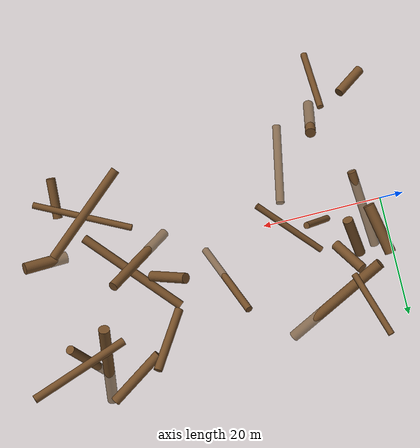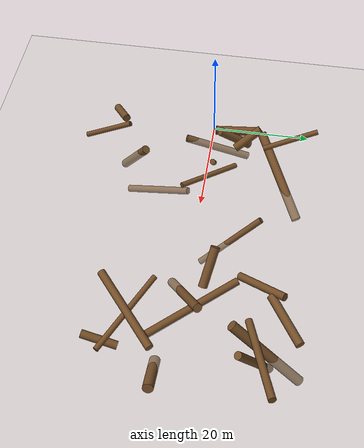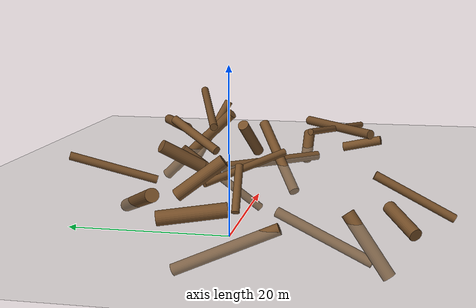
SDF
<sdf version='1.7'>
            <world name='default'>
                <light name='sun' type='directional'>
                <cast_shadows>1</cast_shadows>
                <pose>0 0 10 0 -0 0</pose>
                <diffuse>0.8 0.8 0.8 1</diffuse>
                <specular>0.2 0.2 0.2 1</specular>
                <attenuation>
                    <range>1000</range>
                    <constant>0.9</constant>
                    <linear>0.01</linear>
                    <quadratic>0.001</quadratic>
                </attenuation>
                <direction>-0.5 0.1 -0.9</direction>
                <spot>
                    <inner_angle>0</inner_angle>
                    <outer_angle>0</outer_angle>
                    <falloff>0</falloff>
                </spot>
                </light>
                <model name='ground_plane'>
                <static>1</static>
                <link name='link'>
                    <collision name='collision'>
                    <geometry>
                        <plane>
                        <normal>0 0 1</normal>
                        <size>100 100</size>
                        </plane>
                    </geometry>
                    <surface>
                        <contact>
                        <collide_bitmask>65535</collide_bitmask>
                        <ode/>
                        </contact>
                        <friction>
                        <ode>
                            <mu>100</mu>
                            <mu2>50</mu2>
                        </ode>
                        <torsional>
                            <ode/>
                        </torsional>
                        </friction>
                        <bounce/>
                    </surface>
                    <max_contacts>10</max_contacts>
                    </collision>
                    <visual name='visual'>
                    <cast_shadows>0</cast_shadows>
                    <geometry>
                        <plane>
                        <normal>0 0 1</normal>
                        <size>100 100</size>
                        </plane>
                    </geometry>
                    <material>
                        <script>
                        <uri>file://media/materials/scripts/gazebo.material</uri>
                        <name>Gazebo/Grey</name>
                        </script>
                    </material>
                    </visual>
                    <self_collide>0</self_collide>
                    <enable_wind>0</enable_wind>
                    <kinematic>0</kinematic>
                </link>
                </model>
                <gravity>0 0 -9.8</gravity>
                <magnetic_field>6e-06 2.3e-05 -4.2e-05</magnetic_field>
                <atmosphere type='adiabatic'/>
                <physics type='ode'>
                <max_step_size>0.001</max_step_size>
                <real_time_factor>1</real_time_factor>
                <real_time_update_rate>1000</real_time_update_rate>
                </physics>
                <scene>
                <ambient>0.4 0.4 0.4 1</ambient>
                <background>0.7 0.7 0.7 1</background>
                <shadows>1</shadows>
                </scene>
                <wind/>
                <spherical_coordinates>
                <surface_model>EARTH_WGS84</surface_model>
                <latitude_deg>0</latitude_deg>
                <longitude_deg>0</longitude_deg>
                <elevation>0</elevation>
                <heading_deg>0</heading_deg>
                </spherical_coordinates>
                <model name='cylinder_1'>
      <static>1</static>
      <link name='link'>
        <pose frame=''>0 0 0.1 0 -0 0</pose>
        <collision name='collision_trunk'>
          <pose frame=''>0 0 2 0 -0 0</pose>
          <geometry>
            <cylinder>
              <radius>0.608418062191568</radius>
              <length>15.44861837545718</length>
            </cylinder>
          </geometry>
        </collision>
        <visual name='trunk'>
          <pose frame=''>0 0 2 0 -0 0</pose>
          <geometry>
            <cylinder>
              <radius>0.608418062191568</radius>
              <length>15.44861837545718</length>
            </cylinder>
          </geometry>
          <material>
            <script>
              <uri>model://tree_simple/scripts</uri>
              <uri>model://tree_simple/materials/textures</uri>
              <name>TreeSimple/Trunk</name>
            </script>
          </material>
        </visual>
        <self_collide>0</self_collide>
        <kinematic>0</kinematic>
      </link>
      <pose frame=''>28.74309140010736 5.523164537384758 -1.28453564494205 81.66620832327695 51.143078525046 159.03976409988422</pose>
    </model>
    <model name='cylinder_2'>
      <static>1</static>
      <link name='link'>
        <pose frame=''>0 0 0.1 0 -0 0</pose>
        <collision name='collision_trunk'>
          <pose frame=''>0 0 2 0 -0 0</pose>
          <geometry>
            <cylinder>
              <radius>0.9042376467702632</radius>
          <length>19.53155172963524</length>
            </cylinder>
          </geometry>
        </collision>
        <visual name='trunk'>
          <pose frame=''>0 0 2 0 -0 0</pose>
          <geometry>
            <cylinder>
              <radius>0.9042376467702632</radius>
          <length>19.53155172963524</length>
            </cylinder>
          </geometry>
          <material>
            <script>
              <uri>model://tree_simple/scripts</uri>
              <uri>model://tree_simple/materials/textures</uri>
              <name>TreeSimple/Trunk</name>
            </script>
          </material>
        </visual>
        <self_collide>0</self_collide>
        <kinematic>0</kinematic>
      </link>
      <pose frame=''>13.036621423852985 15.7999727471598 -0.05680977219958461 43.079060653601765 130.9039897219697 95.72326493834481</pose>
    </model>
    <model name='cylinder_3'>
      <static>1</static>
      <link name='link'>
        <pose frame=''>0 0 0.1 0 -0 0</pose>
        <collision name='collision_trunk'>
          <pose frame=''>0 0 2 0 -0 0</pose>
          <geometry>
            <cylinder>
              <radius>0.8617644693248543</radius>
          <length>7.746352162117521</length>
            </cylinder>
          </geometry>
        </collision>
        <visual name='trunk'>
          <pose frame=''>0 0 2 0 -0 0</pose>
          <geometry>
            <cylinder>
              <radius>0.8617644693248543</radius>
          <length>7.746352162117521</length>
            </cylinder>
          </geometry>
          <material>
            <script>
              <uri>model://tree_simple/scripts</uri>
              <uri>model://tree_simple/materials/textures</uri>
              <name>TreeSimple/Trunk</name>
            </script>
          </material>
        </visual>
        <self_collide>0</self_collide>
        <kinematic>0</kinematic>
      </link>
      <pose frame=''>35.62971189444762 4.664431854534715 6.095558604206401 154.25382402557577 63.61996502717365 154.1036633618895</pose>
    </model>
    <model name='cylinder_4'>
      <static>1</static>
      <link name='link'>
        <pose frame=''>0 0 0.1 0 -0 0</pose>
        <collision name='collision_trunk'>
          <pose frame=''>0 0 2 0 -0 0</pose>
          <geometry>
            <cylinder>
              <radius>0.5104546631140593</radius>
          <length>13.108713420082962</length>
            </cylinder>
          </geometry>
        </collision>
        <visual name='trunk'>
          <pose frame=''>0 0 2 0 -0 0</pose>
          <geometry>
            <cylinder>
              <radius>0.5104546631140593</radius>
          <length>13.108713420082962</length>
            </cylinder>
          </geometry>
          <material>
            <script>
              <uri>model://tree_simple/scripts</uri>
              <uri>model://tree_simple/materials/textures</uri>
              <name>TreeSimple/Trunk</name>
            </script>
          </material>
        </visual>
        <self_collide>0</self_collide>
        <kinematic>0</kinematic>
      </link>
      <pose frame=''>17.63175319250415 -0.2950992226931213 5.07315282991263 67.01924632142848 42.8617708981833 82.90652430672031</pose>
    </model>
    <model name='cylinder_5'>
      <static>1</static>
      <link name='link'>
        <pose frame=''>0 0 0.1 0 -0 0</pose>
        <collision name='collision_trunk'>
          <pose frame=''>0 0 2 0 -0 0</pose>
          <geometry>
            <cylinder>
              <radius>0.8502355137619237</radius>
          <length>7.4206891317866654</length>
            </cylinder>
          </geometry>
        </collision>
        <visual name='trunk'>
          <pose frame=''>0 0 2 0 -0 0</pose>
          <geometry>
            <cylinder>
              <radius>0.8502355137619237</radius>
          <length>7.4206891317866654</length>
            </cylinder>
          </geometry>
          <material>
            <script>
              <uri>model://tree_simple/scripts</uri>
              <uri>model://tree_simple/materials/textures</uri>
              <name>TreeSimple/Trunk</name>
            </script>
          </material>
        </visual>
        <self_collide>0</self_collide>
        <kinematic>0</kinematic>
      </link>
      <pose frame=''>6.82884552523584 3.441067422119005 6.507988425495085 154.09791271599417 175.00707129270475 102.12005321730784</pose>
    </model>
    <model name='cylinder_6'>
      <static>1</static>
      <link name='link'>
        <pose frame=''>0 0 0.1 0 -0 0</pose>
        <collision name='collision_trunk'>
          <pose frame=''>0 0 2 0 -0 0</pose>
          <geometry>
            <cylinder>
              <radius>0.7189959923155251</radius>
          <length>10.818242629674472</length>
            </cylinder>
          </geometry>
        </collision>
        <visual name='trunk'>
          <pose frame=''>0 0 2 0 -0 0</pose>
          <geometry>
            <cylinder>
              <radius>0.7189959923155251</radius>
          <length>10.818242629674472</length>
            </cylinder>
          </geometry>
          <material>
            <script>
              <uri>model://tree_simple/scripts</uri>
              <uri>model://tree_simple/materials/textures</uri>
              <name>TreeSimple/Trunk</name>
            </script>
          </material>
        </visual>
        <self_collide>0</self_collide>
        <kinematic>0</kinematic>
      </link>
      <pose frame=''>40.63278106783768 15.726314810531612 5.23919221544903 155.0703525648164 113.59439407080282 52.615330040326654</pose>
    </model>
    <model name='cylinder_7'>
      <static>1</static>
      <link name='link'>
        <pose frame=''>0 0 0.1 0 -0 0</pose>
        <collision name='collision_trunk'>
          <pose frame=''>0 0 2 0 -0 0</pose>
          <geometry>
            <cylinder>
              <radius>0.7546415637202526</radius>
          <length>19.69096530981116</length>
            </cylinder>
          </geometry>
        </collision>
        <visual name='trunk'>
          <pose frame=''>0 0 2 0 -0 0</pose>
          <geometry>
            <cylinder>
              <radius>0.7546415637202526</radius>
          <length>19.69096530981116</length>
            </cylinder>
          </geometry>
          <material>
            <script>
              <uri>model://tree_simple/scripts</uri>
              <uri>model://tree_simple/materials/textures</uri>
              <name>TreeSimple/Trunk</name>
            </script>
          </material>
        </visual>
        <self_collide>0</self_collide>
        <kinematic>0</kinematic>
      </link>
      <pose frame=''>41.66988520149543 3.6769171025211875 -0.25780814507963257 7.86007470172402 99.76074383698679 120.10127915572967</pose>
    </model>
    <model name='cylinder_8'>
      <static>1</static>
      <link name='link'>
        <pose frame=''>0 0 0.1 0 -0 0</pose>
        <collision name='collision_trunk'>
          <pose frame=''>0 0 2 0 -0 0</pose>
          <geometry>
            <cylinder>
              <radius>0.9893891908694399</radius>
          <length>7.450921416067317</length>
            </cylinder>
          </geometry>
        </collision>
        <visual name='trunk'>
          <pose frame=''>0 0 2 0 -0 0</pose>
          <geometry>
            <cylinder>
              <radius>0.9893891908694399</radius>
          <length>7.450921416067317</length>
            </cylinder>
          </geometry>
          <material>
            <script>
              <uri>model://tree_simple/scripts</uri>
              <uri>model://tree_simple/materials/textures</uri>
              <name>TreeSimple/Trunk</name>
            </script>
          </material>
        </visual>
        <self_collide>0</self_collide>
        <kinematic>0</kinematic>
      </link>
      <pose frame=''>54.91574650300494 -2.8952766052696113 -1.038524202852459 48.00738061803634 135.86432934068577 11.555758380431374</pose>
    </model>
    <model name='cylinder_9'>
      <static>1</static>
      <link name='link'>
        <pose frame=''>0 0 0.1 0 -0 0</pose>
        <collision name='collision_trunk'>
          <pose frame=''>0 0 2 0 -0 0</pose>
          <geometry>
            <cylinder>
              <radius>0.7115546709864917</radius>
          <length>14.60313417986844</length>
            </cylinder>
          </geometry>
        </collision>
        <visual name='trunk'>
          <pose frame=''>0 0 2 0 -0 0</pose>
          <geometry>
            <cylinder>
              <radius>0.7115546709864917</radius>
          <length>14.60313417986844</length>
            </cylinder>
          </geometry>
          <material>
            <script>
              <uri>model://tree_simple/scripts</uri>
              <uri>model://tree_simple/materials/textures</uri>
              <name>TreeSimple/Trunk</name>
            </script>
          </material>
        </visual>
        <self_collide>0</self_collide>
        <kinematic>0</kinematic>
      </link>
      <pose frame=''>15.236740797864819 -7.84739092819974 -3.342324504961663 63.99019035898586 134.73577389936318 5.915048319322085</pose>
    </model>
    <model name='cylinder_10'>
      <static>1</static>
      <link name='link'>
        <pose frame=''>0 0 0.1 0 -0 0</pose>
        <collision name='collision_trunk'>
          <pose frame=''>0 0 2 0 -0 0</pose>
          <geometry>
            <cylinder>
              <radius>0.8833556837326186</radius>
          <length>9.424349421245637</length>
            </cylinder>
          </geometry>
        </collision>
        <visual name='trunk'>
          <pose frame=''>0 0 2 0 -0 0</pose>
          <geometry>
            <cylinder>
              <radius>0.8833556837326186</radius>
          <length>9.424349421245637</length>
            </cylinder>
          </geometry>
          <material>
            <script>
              <uri>model://tree_simple/scripts</uri>
              <uri>model://tree_simple/materials/textures</uri>
              <name>TreeSimple/Trunk</name>
            </script>
          </material>
        </visual>
        <self_collide>0</self_collide>
        <kinematic>0</kinematic>
      </link>
      <pose frame=''>8.314335110028457 -14.702466147794553 -1.0238908141570962 69.74730158842432 153.79835130189926 144.035933663312</pose>
    </model>
    <model name='cylinder_11'>
      <static>1</static>
      <link name='link'>
        <pose frame=''>0 0 0.1 0 -0 0</pose>
        <collision name='collision_trunk'>
          <pose frame=''>0 0 2 0 -0 0</pose>
          <geometry>
            <cylinder>
              <radius>0.7201533121115967</radius>
          <length>12.299273504063246</length>
            </cylinder>
          </geometry>
        </collision>
        <visual name='trunk'>
          <pose frame=''>0 0 2 0 -0 0</pose>
          <geometry>
            <cylinder>
              <radius>0.7201533121115967</radius>
          <length>12.299273504063246</length>
            </cylinder>
          </geometry>
          <material>
            <script>
              <uri>model://tree_simple/scripts</uri>
              <uri>model://tree_simple/materials/textures</uri>
              <name>TreeSimple/Trunk</name>
            </script>
          </material>
        </visual>
        <self_collide>0</self_collide>
        <kinematic>0</kinematic>
      </link>
      <pose frame=''>53.88244645541353 13.426297214673966 4.505252358302705 107.3244261141427 154.1312303957847 179.9027687098404</pose>
    </model>
        <model name='cylinder_12'>
      <static>1</static>
      <link name='link'>
        <pose frame=''>0 0 0.1 0 -0 0</pose>
        <collision name='collision_trunk'>
          <pose frame=''>0 0 2 0 -0 0</pose>
          <geometry>
            <cylinder>
              <radius>0.5246838180186845</radius>
          <length>16.584615731494992</length>
            </cylinder>
          </geometry>
        </collision>
        <visual name='trunk'>
          <pose frame=''>0 0 2 0 -0 0</pose>
          <geometry>
            <cylinder>
              <radius>0.5246838180186845</radius>
          <length>16.584615731494992</length>
            </cylinder>
          </geometry>
          <material>
            <script>
              <uri>model://tree_simple/scripts</uri>
              <uri>model://tree_simple/materials/textures</uri>
              <name>TreeSimple/Trunk</name>
            </script>
          </material>
        </visual>
        <self_collide>0</self_collide>
        <kinematic>0</kinematic>
      </link>
      <pose frame=''>46.46163062542597 -7.705800990506244 4.969364268418838 17.416981507381838 8.339963046557095 60.91967252131419</pose>
    </model>
    <model name='cylinder_13'>
      <static>1</static>
      <link name='link'>
        <pose frame=''>0 0 0.1 0 -0 0</pose>
        <collision name='collision_trunk'>
          <pose frame=''>0 0 2 0 -0 0</pose>
          <geometry>
            <cylinder>
              <radius>0.8211347157999933</radius>
          <length>14.915768256252578</length>
            </cylinder>
          </geometry>
        </collision>
        <visual name='trunk'>
          <pose frame=''>0 0 2 0 -0 0</pose>
          <geometry>
            <cylinder>
              <radius>0.8211347157999933</radius>
          <length>14.915768256252578</length>
            </cylinder>
          </geometry>
          <material>
            <script>
              <uri>model://tree_simple/scripts</uri>
              <uri>model://tree_simple/materials/textures</uri>
              <name>TreeSimple/Trunk</name>
            </script>
          </material>
        </visual>
        <self_collide>0</self_collide>
        <kinematic>0</kinematic>
      </link>
      <pose frame=''>42.69548280797999 1.2211111774950751 2.3098173688081847 14.993221325071652 132.54533934022606 169.25005560213484</pose>
    </model>
    <model name='cylinder_14'>
      <static>1</static>
      <link name='link'>
        <pose frame=''>0 0 0.1 0 -0 0</pose>
        <collision name='collision_trunk'>
          <pose frame=''>0 0 2 0 -0 0</pose>
          <geometry>
            <cylinder>
              <radius>0.775695143083511</radius>
          <length>5.7515442308486655</length>
            </cylinder>
          </geometry>
        </collision>
        <visual name='trunk'>
          <pose frame=''>0 0 2 0 -0 0</pose>
          <geometry>
            <cylinder>
              <radius>0.775695143083511</radius>
          <length>5.7515442308486655</length>
            </cylinder>
          </geometry>
          <material>
            <script>
              <uri>model://tree_simple/scripts</uri>
              <uri>model://tree_simple/materials/textures</uri>
              <name>TreeSimple/Trunk</name>
            </script>
          </material>
        </visual>
        <self_collide>0</self_collide>
        <kinematic>0</kinematic>
      </link>
      <pose frame=''>2.411514718821306 -18.680954583170774 3.4256196808700334 44.67236615674743 98.51871404703391 68.97438211525443</pose>
    </model>
    <model name='cylinder_15'>
      <static>1</static>
      <link name='link'>
        <pose frame=''>0 0 0.1 0 -0 0</pose>
        <collision name='collision_trunk'>
          <pose frame=''>0 0 2 0 -0 0</pose>
          <geometry>
            <cylinder>
              <radius>0.9306875769994303</radius>
          <length>17.99244101210012</length>
            </cylinder>
          </geometry>
        </collision>
        <visual name='trunk'>
          <pose frame=''>0 0 2 0 -0 0</pose>
          <geometry>
            <cylinder>
              <radius>0.9306875769994303</radius>
          <length>17.99244101210012</length>
            </cylinder>
          </geometry>
          <material>
            <script>
              <uri>model://tree_simple/scripts</uri>
              <uri>model://tree_simple/materials/textures</uri>
              <name>TreeSimple/Trunk</name>
            </script>
          </material>
        </visual>
        <self_collide>0</self_collide>
        <kinematic>0</kinematic>
      </link>
      <pose frame=''>50.950953549520314 17.766908248339526 -0.8086988557008246 78.8713804007748 77.76978098280729 14.363943389703607</pose>
    </model>
    <model name='cylinder_91'>
  <static>1</static>
  <link name='link'>
    <pose frame=''>0 0 0.1 0 -0 0</pose>
    <collision name='collision_trunk'>
      <pose frame=''>0 0 2 0 -0 0</pose>
      <geometry>
        <cylinder>
          <radius>0.5227633331</radius>
          <length>11.3468432446</length>
        </cylinder>
      </geometry>
    </collision>
    <visual name='trunk'>
      <pose frame=''>0 0 2 0 -0 0</pose>
      <geometry>
        <cylinder>
          <radius>0.5227633331</radius>
          <length>11.3468432446</length>
        </cylinder>
      </geometry>
      <material>
        <script>
          <uri>model://tree_simple/scripts</uri>
          <uri>model://tree_simple/materials/textures</uri>
          <name>TreeSimple/Trunk</name>
        </script>
      </material>
    </visual>
    <self_collide>0</self_collide>
    <kinematic>0</kinematic>
  </link>
  <pose frame=''>6.8112480675 14.3267488028 5.5481134125 43.4412564315 214.8479538177 240.0447189978</pose>
</model>

<model name='cylinder_92'>
  <static>1</static>
  <link name='link'>
    <pose frame=''>0 0 0.1 0 -0 0</pose>
    <collision name='collision_trunk'>
      <pose frame=''>0 0 2 0 -0 0</pose>
      <geometry>
        <cylinder>
          <radius>0.7678333518</radius>
          <length>14.2213559437</length>
        </cylinder>
      </geometry>
    </collision>
    <visual name='trunk'>
      <pose frame=''>0 0 2 0 -0 0</pose>
      <geometry>
        <cylinder>
          <radius>0.7678333518</radius>
          <length>14.2213559437</length>
        </cylinder>
      </geometry>
      <material>
        <script>
          <uri>model://tree_simple/scripts</uri>
          <uri>model://tree_simple/materials/textures</uri>
          <name>TreeSimple/Trunk</name>
        </script>
      </material>
    </visual>
    <self_collide>0</self_collide>
    <kinematic>0</kinematic>
  </link>
  <pose frame=''>2.9918573921 -0.8085214566 -1.8173799931 286.9714341552 119.9698818439 295.1525923782</pose>
</model>

<model name='cylinder_93'>
  <static>1</static>
  <link name='link'>
    <pose frame=''>0 0 0.1 0 -0 0</pose>
    <collision name='collision_trunk'>
      <pose frame=''>0 0 2 0 -0 0</pose>
      <geometry>
        <cylinder>
          <radius>0.6726598641</radius>
          <length>16.737690576</length>
        </cylinder>
      </geometry>
    </collision>
    <visual name='trunk'>
      <pose frame=''>0 0 2 0 -0 0</pose>
      <geometry>
        <cylinder>
          <radius>0.6726598641</radius>
          <length>16.737690576</length>
        </cylinder>
      </geometry>
      <material>
        <script>
          <uri>model://tree_simple/scripts</uri>
          <uri>model://tree_simple/materials/textures</uri>
          <name>TreeSimple/Trunk</name>
        </script>
      </material>
    </visual>
    <self_collide>0</self_collide>
    <kinematic>0</kinematic>
  </link>
  <pose frame=''>56.2634483149 15.8403090869 7.3832396963 294.5285417456 52.2199822998 34.0680591272</pose>
</model>

<model name='cylinder_94'>
  <static>1</static>
  <link name='link'>
    <pose frame=''>0 0 0.1 0 -0 0</pose>
    <collision name='collision_trunk'>
      <pose frame=''>0 0 2 0 -0 0</pose>
      <geometry>
        <cylinder>
          <radius>0.7448036661</radius>
          <length>17.3082464941</length>
        </cylinder>
      </geometry>
    </collision>
    <visual name='trunk'>
      <pose frame=''>0 0 2 0 -0 0</pose>
      <geometry>
        <cylinder>
          <radius>0.7448036661</radius>
          <length>17.3082464941</length>
        </cylinder>
      </geometry>
      <material>
        <script>
          <uri>model://tree_simple/scripts</uri>
          <uri>model://tree_simple/materials/textures</uri>
          <name>TreeSimple/Trunk</name>
        </script>
      </material>
    </visual>
    <self_collide>0</self_collide>
    <kinematic>0</kinematic>
  </link>
  <pose frame=''>49.4372234497 -7.5805158311 5.0952846951 145.8927718097 353.3971099111 313.1113581283</pose>
</model>

<model name='cylinder_95'>
  <static>1</static>
  <link name='link'>
    <pose frame=''>0 0 0.1 0 -0 0</pose>
    <collision name='collision_trunk'>
      <pose frame=''>0 0 2 0 -0 0</pose>
      <geometry>
        <cylinder>
          <radius>0.5324108359</radius>
          <length>10.7923430739</length>
        </cylinder>
      </geometry>
    </collision>
    <visual name='trunk'>
      <pose frame=''>0 0 2 0 -0 0</pose>
      <geometry>
        <cylinder>
          <radius>0.5324108359</radius>
          <length>10.7923430739</length>
        </cylinder>
      </geometry>
      <material>
        <script>
          <uri>model://tree_simple/scripts</uri>
          <uri>model://tree_simple/materials/textures</uri>
          <name>TreeSimple/Trunk</name>
        </script>
      </material>
    </visual>
    <self_collide>0</self_collide>
    <kinematic>0</kinematic>
  </link>
  <pose frame=''>6.8680557145 -19.3601396405 4.9998975457 335.0579705286 251.2321567466 358.087549044</pose>
</model>

<model name='cylinder_96'>
  <static>1</static>
  <link name='link'>
    <pose frame=''>0 0 0.1 0 -0 0</pose>
    <collision name='collision_trunk'>
      <pose frame=''>0 0 2 0 -0 0</pose>
      <geometry>
        <cylinder>
          <radius>0.5405471765</radius>
          <length>6.7501387301</length>
        </cylinder>
      </geometry>
    </collision>
    <visual name='trunk'>
      <pose frame=''>0 0 2 0 -0 0</pose>
      <geometry>
        <cylinder>
          <radius>0.5405471765</radius>
          <length>6.7501387301</length>
        </cylinder>
      </geometry>
      <material>
        <script>
          <uri>model://tree_simple/scripts</uri>
          <uri>model://tree_simple/materials/textures</uri>
          <name>TreeSimple/Trunk</name>
        </script>
      </material>
    </visual>
    <self_collide>0</self_collide>
    <kinematic>0</kinematic>
  </link>
  <pose frame=''>10.1704479976 1.2665331595 1.1694585587 25.7693404999 213.4510403916 83.5532404694</pose>
</model>

<model name='cylinder_97'>
  <static>1</static>
  <link name='link'>
    <pose frame=''>0 0 0.1 0 -0 0</pose>
    <collision name='collision_trunk'>
      <pose frame=''>0 0 2 0 -0 0</pose>
      <geometry>
        <cylinder>
          <radius>0.827595862</radius>
          <length>6.1790474967</length>
        </cylinder>
      </geometry>
    </collision>
    <visual name='trunk'>
      <pose frame=''>0 0 2 0 -0 0</pose>
      <geometry>
        <cylinder>
          <radius>0.827595862</radius>
          <length>6.1790474967</length>
        </cylinder>
      </geometry>
      <material>
        <script>
          <uri>model://tree_simple/scripts</uri>
          <uri>model://tree_simple/materials/textures</uri>
          <name>TreeSimple/Trunk</name>
        </script>
      </material>
    </visual>
    <self_collide>0</self_collide>
    <kinematic>0</kinematic>
  </link>
  <pose frame=''>9.2737205789 6.309215623 6.5027627912 48.0497884277 178.480670694 245.2051903505</pose>
</model>

<model name='cylinder_98'>
  <static>1</static>
  <link name='link'>
    <pose frame=''>0 0 0.1 0 -0 0</pose>
    <collision name='collision_trunk'>
      <pose frame=''>0 0 2 0 -0 0</pose>
      <geometry>
        <cylinder>
          <radius>0.7701931447</radius>
          <length>6.6981533554</length>
        </cylinder>
      </geometry>
    </collision>
    <visual name='trunk'>
      <pose frame=''>0 0 2 0 -0 0</pose>
      <geometry>
        <cylinder>
          <radius>0.7701931447</radius>
          <length>6.6981533554</length>
        </cylinder>
      </geometry>
      <material>
        <script>
          <uri>model://tree_simple/scripts</uri>
          <uri>model://tree_simple/materials/textures</uri>
          <name>TreeSimple/Trunk</name>
        </script>
      </material>
    </visual>
    <self_collide>0</self_collide>
    <kinematic>0</kinematic>
  </link>
  <pose frame=''>52.3707952636 -14.8597670372 1.9837951731 273.5157971149 252.6635805355 180.7487620192</pose>
</model>

<model name='cylinder_99'>
  <static>1</static>
  <link name='link'>
    <pose frame=''>0 0 0.1 0 -0 0</pose>
    <collision name='collision_trunk'>
      <pose frame=''>0 0 2 0 -0 0</pose>
      <geometry>
        <cylinder>
          <radius>0.8031096759</radius>
          <length>10.2994238466</length>
        </cylinder>
      </geometry>
    </collision>
    <visual name='trunk'>
      <pose frame=''>0 0 2 0 -0 0</pose>
      <geometry>
        <cylinder>
          <radius>0.8031096759</radius>
          <length>10.2994238466</length>
        </cylinder>
      </geometry>
      <material>
        <script>
          <uri>model://tree_simple/scripts</uri>
          <uri>model://tree_simple/materials/textures</uri>
          <name>TreeSimple/Trunk</name>
        </script>
      </material>
    </visual>
    <self_collide>0</self_collide>
    <kinematic>0</kinematic>
  </link>
  <pose frame=''>47.715940095 19.9531850044 5.18693772 287.8785991179 334.5783690293 216.2080563487</pose>
</model>

<model name='cylinder_100'>
  <static>1</static>
  <link name='link'>
    <pose frame=''>0 0 0.1 0 -0 0</pose>
    <collision name='collision_trunk'>
      <pose frame=''>0 0 2 0 -0 0</pose>
      <geometry>
        <cylinder>
          <radius>0.9388812358</radius>
          <length>8.7075282816</length>
        </cylinder>
      </geometry>
    </collision>
    <visual name='trunk'>
      <pose frame=''>0 0 2 0 -0 0</pose>
      <geometry>
        <cylinder>
          <radius>0.9388812358</radius>
          <length>8.7075282816</length>
        </cylinder>
      </geometry>
      <material>
        <script>
          <uri>model://tree_simple/scripts</uri>
          <uri>model://tree_simple/materials/textures</uri>
          <name>TreeSimple/Trunk</name>
        </script>
      </material>
    </visual>
    <self_collide>0</self_collide>
    <kinematic>0</kinematic>
  </link>
  <pose frame=''>1.2058355478 6.9826705271 1.7112817266 108.2640608933 37.4460164702 176.1673316435</pose>
</model>
            </world>
            </sdf>
